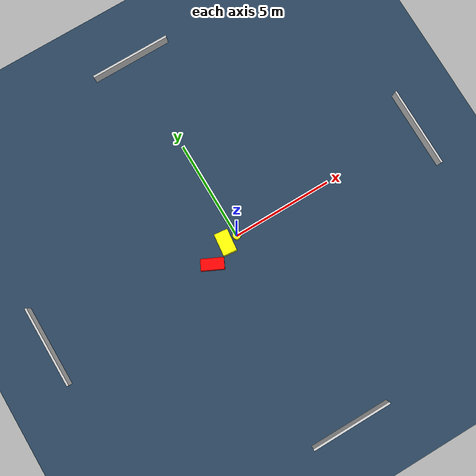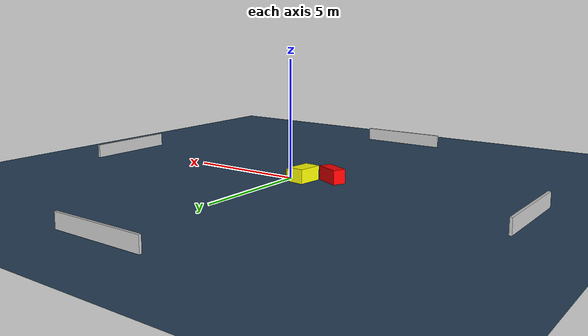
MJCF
<?xml version="1.0" ?>
<mujoco model="generated_environment">
  <option timestep="0.01" integrator="RK4" cone="elliptic"/>
  <default>
    <geom density="1"/>
  </default>
  <asset>
    <texture builtin="gradient" height="3072" name="skybox" rgb1="0.3 0.5 0.7" rgb2="0 0 0" type="skybox" width="512"/>
    <texture builtin="checker" height="300" name="groundplane" rgb1="0.2 0.3 0.4" rgb2="0.1 0.2 0.3" type="2d" width="300"/>
    <material name="groundplane" reflectance="0.2" texrepeat="5 5" texture="groundplane"/>
  </asset>
  <worldbody>
    <light dir="0 0 -1" directional="true" pos="0 0 1.5"/>
    <geom condim="3" friction="0.5 0.005 0.001" material="groundplane" name="floor" pos="0 0 0" size="0 0 0.05" type="plane"/>
    <body name="walls">
      <geom name="wall_1" condim="4" pos="-10.0 0.0 0.3" rgba="0.800000011920929 0.800000011920929 0.800000011920929 1.0" size="0.05 2.0 0.3" type="box"/>
      <geom name="wall_2" condim="4" pos="10.0 0.0 0.3" rgba="0.800000011920929 0.800000011920929 0.800000011920929 1.0" size="0.05 2.0 0.3" type="box"/>
      <geom name="wall_3" condim="4" pos="0.0 -10.0 0.3" rgba="0.800000011920929 0.800000011920929 0.800000011920929 1.0" size="2.0 0.05 0.3" type="box"/>
      <geom name="wall_4" condim="4" pos="0.0 10.0 0.3" rgba="0.800000011920929 0.800000011920929 0.800000011920929 1.0" size="2.0 0.05 0.3" type="box"/>
    </body>
    <body name="robot">
      <joint name="joint_x" type="slide" pos="0 0 0" axis="1 0 0"/>
      <joint name="joint_y" type="slide" pos="0 0 0" axis="0 1 0"/>
      <geom name="robot" type="cylinder" pos="0.0 0.0 0.2" size="0.2 0.2 0.0" mass="5.0" friction="1.0 0.005 0.0001" condim="4" rgba="1.0 1.0 0.0 1.0"/>
    </body>
    <body name="obstacle_1_movable">
      <geom name="obstacle_1_movable" condim="4" pos="-0.6390603270095527 -0.0449439764413992 0.3" euler="0 0 83.94601677782735" friction="0.0 0.005 0.001" rgba="1.0 1.0 0.0 1.0" size="0.540723501523432 0.3394792878100561 0.3" type="box" mass="0.1"/>
      <joint type="free"/>
    </body>
    <body name="obstacle_2_static">
      <geom name="obstacle_2_static" condim="4" pos="-1.6610463580302046 -0.5980436983031457 0.3" euler="0 0 64.45537849160169" friction="0.0 0.005 0.001" rgba="1.0 0.0 0.0 1.0" size="0.2737167343407419 0.5519063457706231 0.3" type="box"/>
    </body>
  </worldbody>
  <actuator>
    <motor name="actuator_x" joint="joint_x" gear="1" ctrlrange="-1 1"/>
    <motor name="actuator_y" joint="joint_y" gear="1" ctrlrange="-1 1"/>
  </actuator>
</mujoco>
